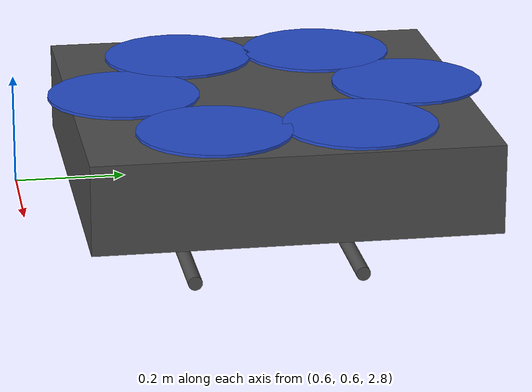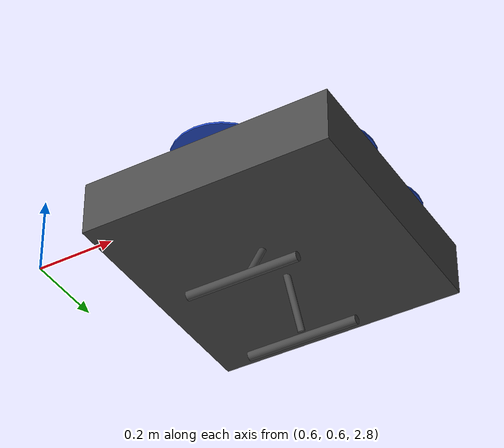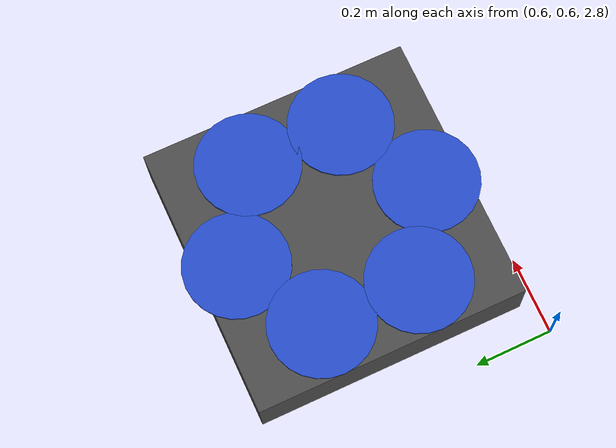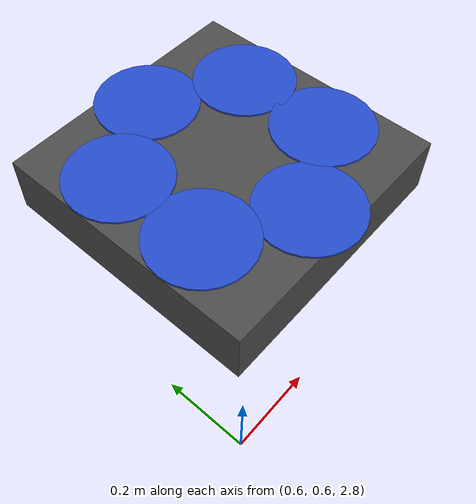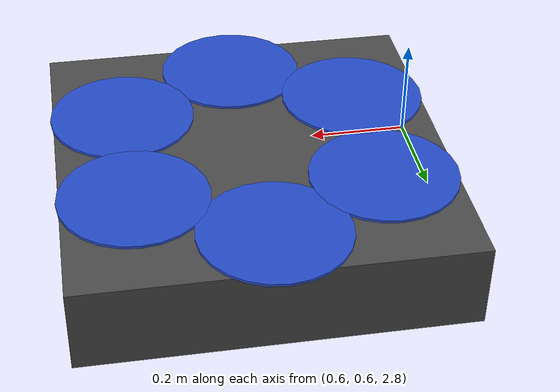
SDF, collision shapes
<?xml version="1.0"?>
<sdf version="1.6">
    <model name='typhoon_h480'>
        <pose>1.0 1.0 3.0 0 0 0</pose>

        <link name='base_link'>
            <pose frame=''>0 0 0 0 0 0</pose>

            <inertial>
                <pose frame=''>0.001005 0 -0.0090035 0 0 0</pose>
                <mass>2.02</mass>
                <inertia>
                    <ixx>0.011</ixx>
                    <ixy>0</ixy>
                    <ixz>0</ixz>
                    <iyy>0.015</iyy>
                    <iyz>0</iyz>
                    <izz>0.021</izz>
                </inertia>
            </inertial>

            <collision name='base_link_collision'>
                <pose frame=''>0 0 0.0 0 0 0</pose>
                <geometry>
                    <box>
                        <size>0.67 0.67 0.15</size>
                    </box>
                </geometry>
                <surface>
                    <contact>
                        <ode>
                            <min_depth>0.001</min_depth>
                            <max_vel>0</max_vel>
                        </ode>
                    </contact>
                    <friction>
                        <ode />
                    </friction>
                </surface>
            </collision>

            <visual name='base_link_visual'>
                <pose frame=''>0 0 0 0 0 0</pose>
                <geometry>
                    <mesh>
                        <scale>0.001 0.001 0.001</scale>
                        <uri>model://typhoon_h480/meshes/main_body_remeshed_v3.stl</uri>
                    </mesh>
                </geometry>
                <material>
                    <diffuse>1 0 0 1</diffuse>
                    <script>
                        <name>Gazebo/DarkGrey</name>
                        <uri>file://media/materials/scripts/gazebo.material</uri>
                    </script>
                </material>
            </visual>

            <gravity>1</gravity>
            <velocity_decay />
            <self_collide>0</self_collide>

            <sensor name="air_pressure_sensor" type="air_pressure">
                <always_on>1</always_on>
                <update_rate>50</update_rate>
                <air_pressure>
                    <pressure>
                        <noise type="gaussian">
                            <mean>0</mean>
                            <stddev>0.01</stddev>
                        </noise>
                    </pressure>
                </air_pressure>
            </sensor>
            <sensor name="imu_sensor" type="imu">
                <always_on>1</always_on>
                <update_rate>250</update_rate>
            </sensor>
        </link>

        <link name="left_leg">
            <inertial>
                <!-- place holder -->
                <pose frame=''>0 -0.14314 -0.207252 0 0 0</pose>
                <mass>0.1</mass>
                <inertia>
                    <ixx>0.001</ixx>
                    <ixy>0</ixy>
                    <ixz>0</ixz>
                    <iyy>0.001</iyy>
                    <iyz>0</iyz>
                    <izz>0.001</izz>
                </inertia>
            </inertial>
            <collision name='collision'>
                <pose frame=''>-0.005 -0.14314 -0.207252 0 1.56893 0</pose>
                <geometry>
                    <cylinder>
                        <radius>0.012209</radius>
                        <length>0.3</length>
                    </cylinder>
                </geometry>
                <surface>
                    <friction>
                        <ode>
                            <mu>1</mu>
                            <mu2>1</mu2>
                        </ode>
                    </friction>
                    <contact>
                        <ode>
                            <kp>1e+8</kp>
                            <kd>1</kd>
                            <max_vel>0.01</max_vel>
                            <min_depth>0.001</min_depth>
                        </ode>
                    </contact>
                </surface>
            </collision>
            <collision name='collision_bar'>
                <pose frame=''>0.00052 -0.08503 -0.121187 -0.501318 0 0</pose>
                <geometry>
                    <cylinder>
                        <radius>0.00914984</radius>
                        <length>0.176893</length>
                    </cylinder>
                </geometry>
                <surface>
                    <friction>
                        <ode>
                            <mu>1</mu>
                            <mu2>1</mu2>
                        </ode>
                    </friction>
                    <contact>
                        <ode>
                            <kp>1e+8</kp>
                            <kd>1</kd>
                            <max_vel>0.01</max_vel>
                            <min_depth>0.001</min_depth>
                        </ode>
                    </contact>
                </surface>
            </collision>
            <visual name='base_link_left_leg'>
                <pose frame=''>0 0 0 0 0 0</pose>
                <geometry>
                    <mesh>
                        <scale>0.001 0.001 0.001</scale>
                        <uri>model://typhoon_h480/meshes/leg2_remeshed_v3.stl</uri>
                    </mesh>
                </geometry>
                <material>
                    <lighting>1</lighting>
                    <script>
                        <uri>file://media/materials/scripts/gazebo.material</uri>
                        <name>Gazebo/DarkGrey</name>
                    </script>
                    <ambient>0.3 0.3 0.3 1</ambient>
                    <diffuse>0.7 0.7 0.7 1</diffuse>
                    <specular>0.01 0.01 0.01 1</specular>
                    <emissive>0 0 0 1</emissive>
                </material>
            </visual>
        </link>
        <joint name='left_leg_joint' type='revolute'>
            <child>left_leg</child>
            <parent>base_link</parent>
            <pose frame=''>0.00026 -0.040515 -0.048 0 0 0</pose>
            <axis>
                <xyz>-1 0 0</xyz>
                <limit>
                    <lower>0</lower>
                    <upper>1</upper>
                    <effort>100</effort>
                    <velocity>-1</velocity>
                    <stiffness>100000000</stiffness>
                    <dissipation>1</dissipation>
                </limit>
                <dynamics>
                    <damping>0.1</damping>
                </dynamics>
                <use_parent_model_frame>1</use_parent_model_frame>
            </axis>
            <physics>
                <ode>
                    <implicit_spring_damper>1</implicit_spring_damper>
                </ode>
            </physics>
        </joint>

        <link name="right_leg">
            <pose frame=''>0 0 0 0 0 0</pose>
            <inertial>
                <!-- place holder -->
                <pose frame=''>0 0.14314 -0.207252 0 0 0</pose>
                <mass>0.1</mass>
                <inertia>
                    <ixx>0.001</ixx>
                    <ixy>0</ixy>
                    <ixz>0</ixz>
                    <iyy>0.001</iyy>
                    <iyz>0</iyz>
                    <izz>0.001</izz>
                </inertia>
            </inertial>
            <collision name='collision'>
                <pose frame=''>-0.005 0.14314 -0.207252 0 1.56893 0</pose>
                <geometry>
                    <cylinder>
                        <radius>0.012209</radius>
                        <length>0.3</length>
                    </cylinder>
                </geometry>
                <surface>
                    <friction>
                        <ode>
                            <mu>1</mu>
                            <mu2>1</mu2>
                        </ode>
                    </friction>
                    <contact>
                        <ode>
                            <kp>1e+8</kp>
                            <kd>1</kd>
                            <max_vel>0.01</max_vel>
                            <min_depth>0.001</min_depth>
                        </ode>
                    </contact>
                </surface>
            </collision>
            <collision name='collision_bar'>
                <pose frame=''>0.00052 0.08503 -0.121187 0.501318 0 0</pose>
                <geometry>
                    <cylinder>
                        <radius>0.00914984</radius>
                        <length>0.176893</length>
                    </cylinder>
                </geometry>
                <surface>
                    <friction>
                        <ode>
                            <mu>1</mu>
                            <mu2>1</mu2>
                        </ode>
                    </friction>
                    <contact>
                        <ode>
                            <kp>1e+8</kp>
                            <kd>1</kd>
                            <max_vel>0.01</max_vel>
                            <min_depth>0.001</min_depth>
                        </ode>
                    </contact>
                </surface>
            </collision>
            <visual name='base_link_right_leg'>
                <pose frame=''>0 0 0 0 0 0</pose>
                <geometry>
                    <mesh>
                        <scale>0.001 0.001 0.001</scale>
                        <uri>model://typhoon_h480/meshes/leg1_remeshed_v3.stl</uri>
                    </mesh>
                </geometry>
                <material>
                    <lighting>1</lighting>
                    <script>
                        <uri>file://media/materials/scripts/gazebo.material</uri>
                        <name>Gazebo/DarkGrey</name>
                    </script>
                    <ambient>0.3 0.3 0.3 1</ambient>
                    <diffuse>0.7 0.7 0.7 1</diffuse>
                    <specular>0.01 0.01 0.01 1</specular>
                    <emissive>0 0 0 1</emissive>
                </material>
            </visual>
        </link>
        <joint name='right_leg_joint' type='revolute'>
            <child>right_leg</child>
            <parent>base_link</parent>
            <pose frame=''>0.00026 0.040515 -0.048 0 0 0</pose>
            <axis>
                <xyz>1 0 0</xyz>
                <limit>
                    <lower>0</lower>
                    <upper>1</upper>
                    <effort>100</effort>
                    <velocity>-1</velocity>
                    <stiffness>100000000</stiffness>
                    <dissipation>1</dissipation>
                </limit>
                <dynamics>
                    <damping>0.1</damping>
                </dynamics>
                <use_parent_model_frame>1</use_parent_model_frame>
            </axis>
            <physics>
                <ode>
                    <implicit_spring_damper>1</implicit_spring_damper>
                </ode>
            </physics>
        </joint>

        <plugin filename="gz-sim-joint-position-controller-system"
            name="gz::sim::systems::JointPositionController">
            <joint_name>left_leg_joint</joint_name>
            <joint_name>right_leg_joint</joint_name>
            <sub_topic>servo_0</sub_topic>
            <p_gain>10.0</p_gain>
        </plugin>

        <link name='rotor_0'>
            <pose frame=''>-0.00187896 -0.242705 0.0822169 0 0 -2.09439510239</pose>
            <inertial>
                <pose frame=''>0 0 0 0 0 0</pose>
                <mass>0.005</mass>
                <inertia>
                    <ixx>9.75e-07</ixx>
                    <ixy>0</ixy>
                    <ixz>0</ixz>
                    <iyy>0.000273104</iyy>
                    <iyz>0</iyz>
                    <izz>0.000274004</izz>
                </inertia>
            </inertial>
            <collision name='rotor_0_collision'>
                <pose frame=''>0 0 0 0 0 0</pose>
                <geometry>
                    <cylinder>
                        <length>0.005</length>
                        <radius>0.128</radius>
                    </cylinder>
                </geometry>
                <surface>
                    <contact>
                        <ode />
                    </contact>
                    <friction>
                        <ode />
                    </friction>
                </surface>
            </collision>
            <visual name='rotor_0_visual'>
                <pose frame=''>0.00187896 -0.242705 -0.0822169 0 0 0</pose>
                <geometry>
                    <mesh>
                        <scale>0.001 0.001 0.001</scale>
                        <uri>model://typhoon_h480/meshes/prop_cw_assembly_remeshed_v3.stl</uri>
                    </mesh>
                </geometry>
                <material>
                    <diffuse>0 0 1 1</diffuse>
                    <script>
                        <name>Gazebo/Blue</name>
                        <uri>file://media/materials/scripts/gazebo.material</uri>
                    </script>
                </material>
            </visual>
            <gravity>1</gravity>
            <velocity_decay />
            <self_collide>0</self_collide>
        </link>
        <joint name='rotor_0_joint' type='revolute'>
            <child>rotor_0</child>
            <parent>base_link</parent>
            <axis>
                <xyz>-0.033996 -0.0006 0.68216</xyz>
                <limit>
                    <lower>-1e+16</lower>
                    <upper>1e+16</upper>
                    <effort>10</effort>
                    <velocity>-1</velocity>
                </limit>
                <dynamics>
                    <damping>0.005</damping>
                </dynamics>
                <use_parent_model_frame>1</use_parent_model_frame>
            </axis>
            <physics>
                <ode>
                    <implicit_spring_damper>1</implicit_spring_damper>
                </ode>
            </physics>
        </joint>
        <plugin filename="gz-sim-multicopter-motor-model-system"
            name="gz::sim::systems::MulticopterMotorModel">
            <jointName>rotor_0_joint</jointName>
            <linkName>rotor_0</linkName>
            <turningDirection>cw</turningDirection>
            <timeConstantUp>0.0125</timeConstantUp>
            <timeConstantDown>0.025</timeConstantDown>
            <maxRotVelocity>1000.0</maxRotVelocity>
            <motorConstant>8.54858e-06</motorConstant>
            <momentConstant>0.016</momentConstant>
            <commandSubTopic>command/motor_speed</commandSubTopic>
            <motorNumber>0</motorNumber>
            <rotorDragCoefficient>8.06428e-05</rotorDragCoefficient>
            <rollingMomentCoefficient>1e-06</rollingMomentCoefficient>
            <rotorVelocitySlowdownSim>10</rotorVelocitySlowdownSim>
            <motorType>velocity</motorType>
        </plugin>

        <link name='rotor_1'>
            <pose frame=''>-0.00187896 0.242705 0.0822169 0 0 0</pose>
            <inertial>
                <pose frame=''>0 0 0 0 0 0</pose>
                <mass>0.005</mass>
                <inertia>
                    <ixx>9.75e-07</ixx>
                    <ixy>0</ixy>
                    <ixz>0</ixz>
                    <iyy>0.000273104</iyy>
                    <iyz>0</iyz>
                    <izz>0.000274004</izz>
                </inertia>
            </inertial>
            <collision name='rotor_1_collision'>
                <pose frame=''>0 0 0 0 0 0</pose>
                <geometry>
                    <cylinder>
                        <length>0.005</length>
                        <radius>0.128</radius>
                    </cylinder>
                </geometry>
                <surface>
                    <contact>
                        <ode />
                    </contact>
                    <friction>
                        <ode />
                    </friction>
                </surface>
            </collision>
            <visual name='rotor_1_visual'>
                <pose frame=''>-0.211396 -0.119762 -0.082219 0 0 0</pose>
                <geometry>
                    <mesh>
                        <scale>0.001 0.001 0.001</scale>
                        <uri>model://typhoon_h480/meshes/prop_ccw_assembly_remeshed_v3.stl</uri>
                    </mesh>
                </geometry>
                <material>
                    <diffuse>0 0 1 1</diffuse>
                    <script>
                        <name>Gazebo/Blue</name>
                        <uri>file://media/materials/scripts/gazebo.material</uri>
                    </script>
                </material>
            </visual>
            <gravity>1</gravity>
            <velocity_decay />
            <self_collide>0</self_collide>
        </link>
        <joint name='rotor_1_joint' type='revolute'>
            <child>rotor_1</child>
            <parent>base_link</parent>
            <axis>
                <xyz>-0.09563 -0.0003 1.8976</xyz>
                <limit>
                    <lower>-1e+16</lower>
                    <upper>1e+16</upper>
                    <effort>10</effort>
                    <velocity>-1</velocity>
                </limit>
                <dynamics>
                    <damping>0.005</damping>
                </dynamics>
                <use_parent_model_frame>1</use_parent_model_frame>
            </axis>
            <physics>
                <ode>
                    <implicit_spring_damper>1</implicit_spring_damper>
                </ode>
            </physics>
        </joint>
        <plugin filename="gz-sim-multicopter-motor-model-system"
            name="gz::sim::systems::MulticopterMotorModel">
            <jointName>rotor_1_joint</jointName>
            <linkName>rotor_1</linkName>
            <turningDirection>ccw</turningDirection>
            <timeConstantUp>0.0125</timeConstantUp>
            <timeConstantDown>0.025</timeConstantDown>
            <maxRotVelocity>1000.0</maxRotVelocity>
            <motorConstant>8.54858e-06</motorConstant>
            <momentConstant>0.016</momentConstant>
            <commandSubTopic>command/motor_speed</commandSubTopic>
            <motorNumber>1</motorNumber>
            <rotorDragCoefficient>8.06428e-05</rotorDragCoefficient>
            <rollingMomentCoefficient>1e-06</rollingMomentCoefficient>
            <rotorVelocitySlowdownSim>10</rotorVelocitySlowdownSim>
            <motorType>velocity</motorType>
        </plugin>

        <link name='rotor_2'>
            <pose frame=''>0.211396 0.119762 0.082219 0 0 0</pose>
            <inertial>
                <pose frame=''>0 0 0 0 0 0</pose>
                <mass>0.005</mass>
                <inertia>
                    <ixx>9.75e-07</ixx>
                    <ixy>0</ixy>
                    <ixz>0</ixz>
                    <iyy>0.000273104</iyy>
                    <iyz>0</iyz>
                    <izz>0.000274004</izz>
                </inertia>
            </inertial>
            <collision name='rotor_2_collision'>
                <pose frame=''>0 0 0 0 0 0</pose>
                <geometry>
                    <cylinder>
                        <length>0.005</length>
                        <radius>0.128</radius>
                    </cylinder>
                </geometry>
                <surface>
                    <contact>
                        <ode />
                    </contact>
                    <friction>
                        <ode />
                    </friction>
                </surface>
            </collision>
            <visual name='rotor_2_visual'>
                <pose frame=''>0.00187896 -0.242705 -0.0822169 0 0 0</pose>
                <geometry>
                    <mesh>
                        <scale>0.001 0.001 0.001</scale>
                        <uri>model://typhoon_h480/meshes/prop_cw_assembly_remeshed_v3.stl</uri>
                    </mesh>
                </geometry>
                <material>
                    <diffuse>1 0 0 1</diffuse>
                    <script>
                        <name>Gazebo/Blue</name>
                        <uri>file://media/materials/scripts/gazebo.material</uri>
                    </script>
                </material>
            </visual>
            <gravity>1</gravity>
            <velocity_decay />
            <self_collide>0</self_collide>
        </link>
        <joint name='rotor_2_joint' type='revolute'>
            <child>rotor_2</child>
            <parent>base_link</parent>
            <axis>
                <xyz>0.0446 -0.0825 1.8977</xyz>
                <limit>
                    <lower>-1e+16</lower>
                    <upper>1e+16</upper>
                    <effort>10</effort>
                    <velocity>-1</velocity>
                </limit>
                <dynamics>
                    <damping>0.005</damping>
                </dynamics>
                <use_parent_model_frame>1</use_parent_model_frame>
            </axis>
            <physics>
                <ode>
                    <implicit_spring_damper>1</implicit_spring_damper>
                </ode>
            </physics>
        </joint>
        <plugin filename="gz-sim-multicopter-motor-model-system"
            name="gz::sim::systems::MulticopterMotorModel">
            <jointName>rotor_2_joint</jointName>
            <linkName>rotor_2</linkName>
            <turningDirection>cw</turningDirection>
            <timeConstantUp>0.0125</timeConstantUp>
            <timeConstantDown>0.025</timeConstantDown>
            <maxRotVelocity>1000.0</maxRotVelocity>
            <motorConstant>8.54858e-06</motorConstant>
            <momentConstant>0.016</momentConstant>
            <commandSubTopic>command/motor_speed</commandSubTopic>
            <motorNumber>2</motorNumber>
            <rotorDragCoefficient>8.06428e-05</rotorDragCoefficient>
            <rollingMomentCoefficient>1e-06</rollingMomentCoefficient>
            <rotorVelocitySlowdownSim>10</rotorVelocitySlowdownSim>
            <motorType>velocity</motorType>
        </plugin>

        <link name='rotor_3'>
            <pose frame=''>-0.209396 -0.122762 0.082219 0 0 2.09439510239</pose>
            <inertial>
                <pose frame=''>0 0 0 0 0 0</pose>
                <mass>0.005</mass>
                <inertia>
                    <ixx>9.75e-07</ixx>
                    <ixy>0</ixy>
                    <ixz>0</ixz>
                    <iyy>0.000273104</iyy>
                    <iyz>0</iyz>
                    <izz>0.000274004</izz>
                </inertia>
            </inertial>
            <collision name='rotor_3_collision'>
                <pose frame=''>0 0 0 0 0 0</pose>
                <geometry>
                    <cylinder>
                        <length>0.005</length>
                        <radius>0.128</radius>
                    </cylinder>
                </geometry>
                <surface>
                    <contact>
                        <ode />
                    </contact>
                    <friction>
                        <ode />
                    </friction>
                </surface>
            </collision>
            <visual name='rotor_3_visual'>
                <pose frame=''>-0.211396 -0.119762 -0.082219 0 0 0</pose>
                <geometry>
                    <mesh>
                        <scale>0.001 0.001 0.001</scale>
                        <uri>model://typhoon_h480/meshes/prop_ccw_assembly_remeshed_v3.stl</uri>
                    </mesh>
                </geometry>
                <material>
                    <diffuse>1 0 0 1</diffuse>
                    <script>
                        <name>Gazebo/Blue</name>
                        <uri>file://media/materials/scripts/gazebo.material</uri>
                    </script>
                </material>
            </visual>
            <gravity>1</gravity>
            <velocity_decay />
            <self_collide>0</self_collide>
        </link>
        <joint name='rotor_3_joint' type='revolute'>
            <child>rotor_3</child>
            <parent>base_link</parent>
            <axis>
                <xyz>0.0404 -0.0876 1.8976</xyz>
                <limit>
                    <lower>-1e+16</lower>
                    <upper>1e+16</upper>
                    <effort>10</effort>
                    <velocity>-1</velocity>
                </limit>
                <dynamics>
                    <damping>0.005</damping>
                </dynamics>
                <use_parent_model_frame>1</use_parent_model_frame>
            </axis>
            <physics>
                <ode>
                    <implicit_spring_damper>1</implicit_spring_damper>
                </ode>
            </physics>
        </joint>
        <plugin filename="gz-sim-multicopter-motor-model-system"
            name="gz::sim::systems::MulticopterMotorModel">
            <jointName>rotor_3_joint</jointName>
            <linkName>rotor_3</linkName>
            <turningDirection>ccw</turningDirection>
            <timeConstantUp>0.0125</timeConstantUp>
            <timeConstantDown>0.025</timeConstantDown>
            <maxRotVelocity>1000.0</maxRotVelocity>
            <motorConstant>8.54858e-06</motorConstant>
            <momentConstant>0.016</momentConstant>
            <commandSubTopic>command/motor_speed</commandSubTopic>
            <motorNumber>3</motorNumber>
            <rotorDragCoefficient>8.06428e-05</rotorDragCoefficient>
            <rollingMomentCoefficient>1e-06</rollingMomentCoefficient>
            <rotorVelocitySlowdownSim>10</rotorVelocitySlowdownSim>
            <motorType>velocity</motorType>
        </plugin>

        <link name='rotor_4'>
            <pose frame=''>0.211396 -0.119762 0.082219 0 0 -2.09439510239</pose>
            <inertial>
                <pose frame=''>0 0 0 0 0 0</pose>
                <mass>0.005</mass>
                <inertia>
                    <ixx>9.75e-07</ixx>
                    <ixy>0</ixy>
                    <ixz>0</ixz>
                    <iyy>0.000273104</iyy>
                    <iyz>0</iyz>
                    <izz>0.000274004</izz>
                </inertia>
            </inertial>
            <collision name='rotor_4_collision'>
                <pose frame=''>0 0 0 0 0 0</pose>
                <geometry>
                    <cylinder>
                        <length>0.005</length>
                        <radius>0.128</radius>
                    </cylinder>
                </geometry>
                <surface>
                    <contact>
                        <ode />
                    </contact>
                    <friction>
                        <ode />
                    </friction>
                </surface>
            </collision>
            <visual name='rotor_4_visual'>
                <pose frame=''>-0.211396 -0.119762 -0.082219 0 0 0</pose>
                <geometry>
                    <mesh>
                        <scale>0.001 0.001 0.001</scale>
                        <uri>model://typhoon_h480/meshes/prop_ccw_assembly_remeshed_v3.stl</uri>
                    </mesh>
                </geometry>
                <material>
                    <diffuse>0 0 1 1</diffuse>
                    <script>
                        <name>Gazebo/Blue</name>
                        <uri>file://media/materials/scripts/gazebo.material</uri>
                    </script>
                </material>
            </visual>
            <gravity>1</gravity>
            <velocity_decay />
            <self_collide>0</self_collide>
        </link>
        <joint name='rotor_4_joint' type='revolute'>
            <child>rotor_4</child>
            <parent>base_link</parent>
            <axis>
                <xyz>0.0486 0.0811 1.8976</xyz>
                <limit>
                    <lower>-1e+16</lower>
                    <upper>1e+16</upper>
                    <effort>10</effort>
                    <velocity>-1</velocity>
                </limit>
                <dynamics>
                    <damping>0.005</damping>
                </dynamics>
                <use_parent_model_frame>1</use_parent_model_frame>
            </axis>
            <physics>
                <ode>
                    <implicit_spring_damper>1</implicit_spring_damper>
                </ode>
            </physics>
        </joint>
        <plugin filename="gz-sim-multicopter-motor-model-system"
            name="gz::sim::systems::MulticopterMotorModel">
            <jointName>rotor_4_joint</jointName>
            <linkName>rotor_4</linkName>
            <turningDirection>ccw</turningDirection>
            <timeConstantUp>0.0125</timeConstantUp>
            <timeConstantDown>0.025</timeConstantDown>
            <maxRotVelocity>1000.0</maxRotVelocity>
            <motorConstant>8.54858e-06</motorConstant>
            <momentConstant>0.016</momentConstant>
            <commandSubTopic>command/motor_speed</commandSubTopic>
            <motorNumber>4</motorNumber>
            <rotorDragCoefficient>8.06428e-05</rotorDragCoefficient>
            <rollingMomentCoefficient>1e-06</rollingMomentCoefficient>
            <rotorVelocitySlowdownSim>10</rotorVelocitySlowdownSim>
            <motorType>velocity</motorType>
        </plugin>

        <link name='rotor_5'>
            <pose frame=''>-0.209396 0.122762 0.082219 0 0 2.09439510239</pose>
            <inertial>
                <pose frame=''>0 0 0 0 0 0</pose>
                <mass>0.005</mass>
                <inertia>
                    <ixx>9.75e-07</ixx>
                    <ixy>0</ixy>
                    <ixz>0</ixz>
                    <iyy>0.000273104</iyy>
                    <iyz>0</iyz>
                    <izz>0.000274004</izz>
                </inertia>
            </inertial>
            <collision name='rotor_5_collision'>
                <pose frame=''>0 0 0 0 0 0</pose>
                <geometry>
                    <cylinder>
                        <length>0.005</length>
                        <radius>0.128</radius>
                    </cylinder>
                </geometry>
                <surface>
                    <contact>
                        <ode />
                    </contact>
                    <friction>
                        <ode />
                    </friction>
                </surface>
            </collision>
            <visual name='rotor_5_visual'>
                <pose frame=''>0.00187896 -0.242705 -0.0822169 0 0 0</pose>
                <geometry>
                    <mesh>
                        <scale>0.001 0.001 0.001</scale>
                        <uri>model://typhoon_h480/meshes/prop_cw_assembly_remeshed_v3.stl</uri>
                    </mesh>
                </geometry>
                <material>
                    <diffuse>0 0 1 1</diffuse>
                    <script>
                        <name>Gazebo/Blue</name>
                        <uri>file://media/materials/scripts/gazebo.material</uri>
                    </script>
                </material>
            </visual>
            <gravity>1</gravity>
            <velocity_decay />
            <self_collide>0</self_collide>
        </link>
        <joint name='rotor_5_joint' type='revolute'>
            <child>rotor_5</child>
            <parent>base_link</parent>
            <axis>
                <xyz>0.046 0.0827 1.8977</xyz>
                <limit>
                    <lower>-1e+16</lower>
                    <upper>1e+16</upper>
                    <effort>10</effort>
                    <velocity>-1</velocity>
                </limit>
                <dynamics>
                    <damping>0.005</damping>
                </dynamics>
                <use_parent_model_frame>1</use_parent_model_frame>
            </axis>
            <physics>
                <ode>
                    <implicit_spring_damper>1</implicit_spring_damper>
                </ode>
            </physics>
        </joint>
        <plugin filename="libgz-sim7-multicopter-motor-model-system"
            name="gz::sim::systems::MulticopterMotorModel">
            <jointName>rotor_5_joint</jointName>
            <linkName>rotor_5</linkName>
            <turningDirection>cw</turningDirection>
            <timeConstantUp>0.0125</timeConstantUp>
            <timeConstantDown>0.025</timeConstantDown>
            <maxRotVelocity>1000.0</maxRotVelocity>
            <motorConstant>8.54858e-06</motorConstant>
            <momentConstant>0.016</momentConstant>
            <commandSubTopic>command/motor_speed</commandSubTopic>
            <motorNumber>5</motorNumber>
            <rotorDragCoefficient>8.06428e-05</rotorDragCoefficient>
            <rollingMomentCoefficient>1e-06</rollingMomentCoefficient>
            <rotorVelocitySlowdownSim>10</rotorVelocitySlowdownSim>
            <motorType>velocity</motorType>
        </plugin>

        <plugin filename="gz-sim-odometry-publisher-system"
            name="gz::sim::systems::OdometryPublisher">
            <dimensions>3</dimensions>
            <odom_frame>world</odom_frame>
        </plugin>

    </model>
</sdf>
